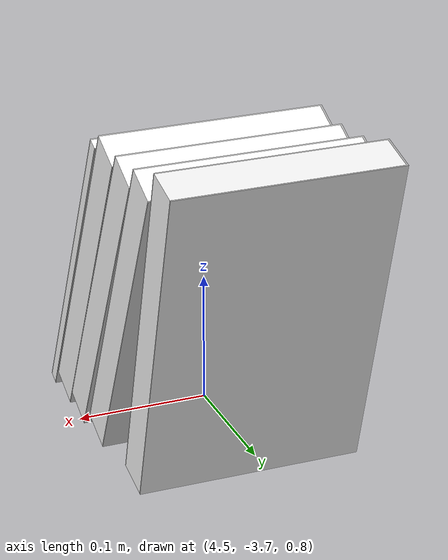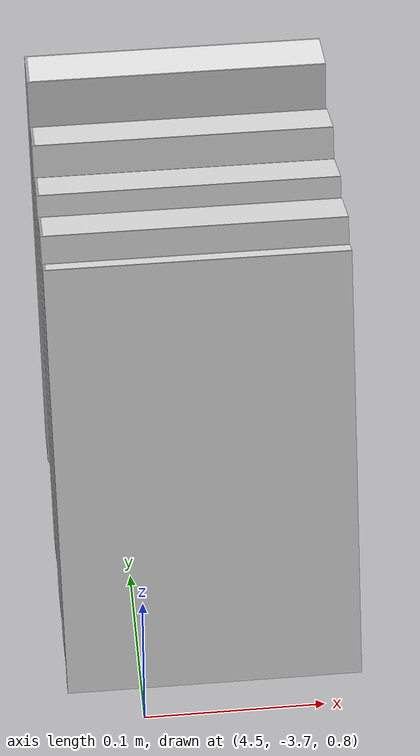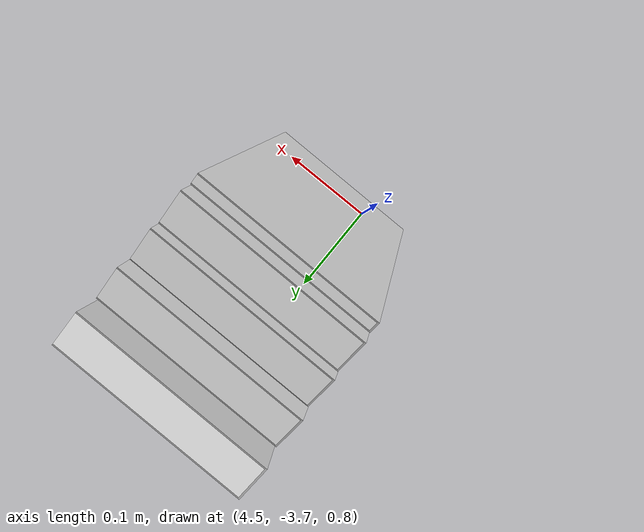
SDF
<sdf version="1.7">
 <world name="default">
  <model name="ground_plane">
   <static>1</static>
   <link name="link">
    <collision name="collision">
     <geometry><plane><normal>0 0 1</normal><size>100 100</size></plane></geometry>
     <surface><friction><ode><mu>100</mu><mu2>50</mu2></ode></friction></surface>
    </collision>
    <visual name="visual">
     <cast_shadows>0</cast_shadows>
     <geometry><plane><normal>0 0 1</normal><size>100 100</size></plane></geometry>
     <material>
      <script><uri>file://media/materials/scripts/gazebo.material</uri><name>Gazebo/Grey</name></script>
     </material>
    </visual>
   </link>
  </model>
  <model name="book_1">
   <link name="cover">
    <pose>0 -0.000108 0.015405 0 -0 0</pose>
    <visual name="visual">
     <geometry><box><size>0.245 0.16 0.03</size></box></geometry>
     <material>
      <script>
       <uri>model://book_1/materials/scripts</uri>
       <uri>model://book_1/materials/textures</uri>
       <name>book_1</name>
      </script>
     </material>
    </visual>
    <collision name="collision"><geometry><box><size>0.245 0.16 0.03</size></box></geometry></collision>
   </link>
   <link name="page">
    <pose>0 0.000608 0.015405 0 -0 0</pose>
    <visual name="visual">
     <geometry><box><size>0.24502 0.15862 0.028</size></box></geometry>
     <material>
      <lighting>1</lighting>
      <ambient>1 1 1 1</ambient>
      <diffuse>1 1 1 1</diffuse>
      <specular>0.01 0.01 0.01 1</specular>
      <emissive>0 0 0 1</emissive>
      <shader type="vertex"><normal_map>__default__</normal_map></shader>
     </material>
    </visual>
    <collision name="collision"><geometry><box><size>0.245 0.16 0.03</size></box></geometry></collision>
   </link>
   <static>1</static>
   <pose>4.53796 -3.57288 0.95783 3.13964 -1.15052 1.57019</pose>
  </model>
  <model name="book_12">
   <link name="cover">
    <pose>0 -0.000108 0.015405 0 -0 0</pose>
    <visual name="visual">
     <geometry><box><size>0.245 0.16 0.03</size></box></geometry>
     <material>
      <script>
       <uri>model://book_12/materials/scripts</uri>
       <uri>model://book_12/materials/textures</uri>
       <name>book_12</name>
      </script>
     </material>
    </visual>
    <collision name="collision"><geometry><box><size>0.245 0.16 0.03</size></box></geometry></collision>
   </link>
   <link name="page">
    <pose>0 0.000608 0.015405 0 -0 0</pose>
    <visual name="visual">
     <geometry><box><size>0.24502 0.15862 0.028</size></box></geometry>
     <material>
      <lighting>1</lighting>
      <ambient>1 1 1 1</ambient>
      <diffuse>1 1 1 1</diffuse>
      <specular>0.01 0.01 0.01 1</specular>
      <emissive>0 0 0 1</emissive>
      <shader type="vertex"><normal_map>__default__</normal_map></shader>
     </material>
    </visual>
    <collision name="collision"><geometry><box><size>0.245 0.16 0.03</size></box></geometry></collision>
   </link>
   <static>1</static>
   <pose>4.53794 -3.60986 0.955818 3.13975 -1.123 1.57007</pose>
  </model>
  <model name="book_14">
   <link name="cover">
    <pose>0 -0.000108 0.015405 0 -0 0</pose>
    <visual name="visual">
     <geometry><box><size>0.245 0.16 0.03</size></box></geometry>
     <material>
      <script>
       <uri>model://book_14/materials/scripts</uri>
       <uri>model://book_14/materials/textures</uri>
       <name>book_14</name>
      </script>
     </material>
    </visual>
    <collision name="collision"><geometry><box><size>0.245 0.16 0.03</size></box></geometry></collision>
   </link>
   <link name="page">
    <pose>0 0.000608 0.015405 0 -0 0</pose>
    <visual name="visual">
     <geometry><box><size>0.24502 0.15862 0.028</size></box></geometry>
     <material>
      <lighting>1</lighting>
      <ambient>1 1 1 1</ambient>
      <diffuse>1 1 1 1</diffuse>
      <specular>0.01 0.01 0.01 1</specular>
      <emissive>0 0 0 1</emissive>
      <shader type="vertex"><normal_map>__default__</normal_map></shader>
     </material>
    </visual>
    <collision name="collision"><geometry><box><size>0.245 0.16 0.03</size></box></geometry></collision>
   </link>
   <static>1</static>
   <pose>4.53795 -3.51692 0.962229 3.13848 -1.31226 1.57142</pose>
  </model>
  <model name="book_17">
   <link name="cover">
    <pose>0 -0.000108 0.015405 0 -0 0</pose>
    <visual name="visual">
     <geometry><box><size>0.245 0.16 0.03</size></box></geometry>
     <material>
      <script>
       <uri>model://book_17/materials/scripts</uri>
       <uri>model://book_17/materials/textures</uri>
       <name>book_17</name>
      </script>
     </material>
    </visual>
    <collision name="collision"><geometry><box><size>0.245 0.16 0.03</size></box></geometry></collision>
   </link>
   <link name="page">
    <pose>0 0.000608 0.015405 0 -0 0</pose>
    <visual name="visual">
     <geometry><box><size>0.24502 0.15862 0.028</size></box></geometry>
     <material>
      <lighting>1</lighting>
      <ambient>1 1 1 1</ambient>
      <diffuse>1 1 1 1</diffuse>
      <specular>0.01 0.01 0.01 1</specular>
      <emissive>0 0 0 1</emissive>
      <shader type="vertex"><normal_map>__default__</normal_map></shader>
     </material>
    </visual>
    <collision name="collision"><geometry><box><size>0.245 0.16 0.03</size></box></geometry></collision>
   </link>
   <static>1</static>
   <pose>4.53801 -3.64141 0.957888 3.13972 -1.13115 1.5701</pose>
  </model>
  <model name="book_9">
   <link name="cover">
    <pose>0 -0.000108 0.005 0 -0 0</pose>
    <visual name="visual">
     <geometry><box><size>0.245 0.16 0.01</size></box></geometry>
     <material>
      <script>
       <uri>model://book_9/materials/scripts</uri>
       <uri>model://book_9/materials/textures</uri>
       <name>book_9</name>
      </script>
     </material>
    </visual>
    <collision name="collision"><geometry><box><size>0.245 0.16 0.01</size></box></geometry></collision>
   </link>
   <link name="page">
    <pose>0 0.000608 0.005 0 -0 0</pose>
    <visual name="visual">
     <geometry><box><size>0.24502 0.15862 0.008</size></box></geometry>
     <material>
      <lighting>1</lighting>
      <ambient>1 1 1 1</ambient>
      <diffuse>1 1 1 1</diffuse>
      <specular>0.01 0.01 0.01 1</specular>
      <emissive>0 0 0 1</emissive>
      <shader type="vertex"><normal_map>__default__</normal_map></shader>
     </material>
    </visual>
    <collision name="collision"><geometry><box><size>0.245 0.16 0.008</size></box></geometry></collision>
   </link>
   <static>1</static>
   <pose>4.53808 -3.65715 0.949304 3.13971 -1.13441 1.57011</pose>
  </model>
 </world>
</sdf>
